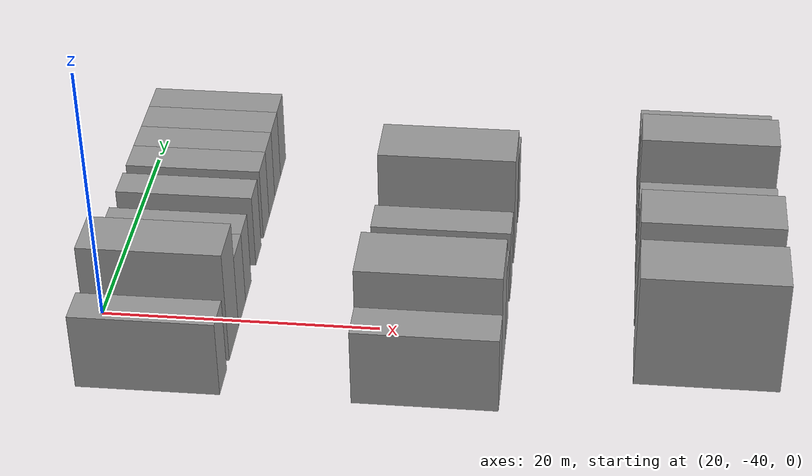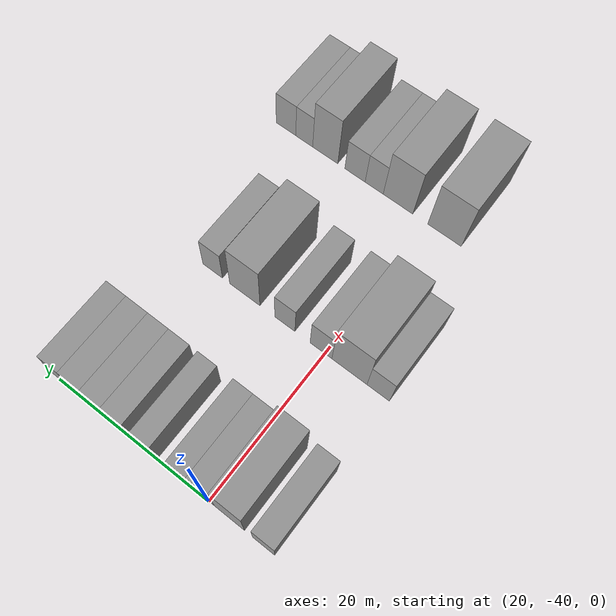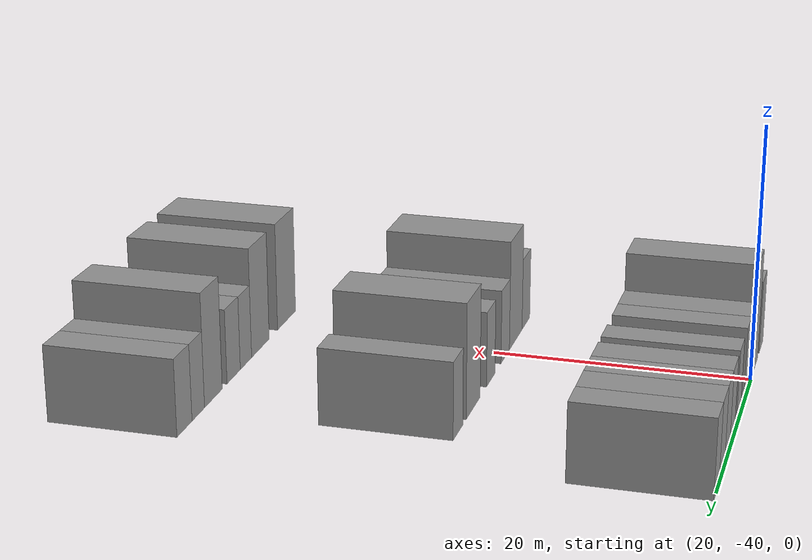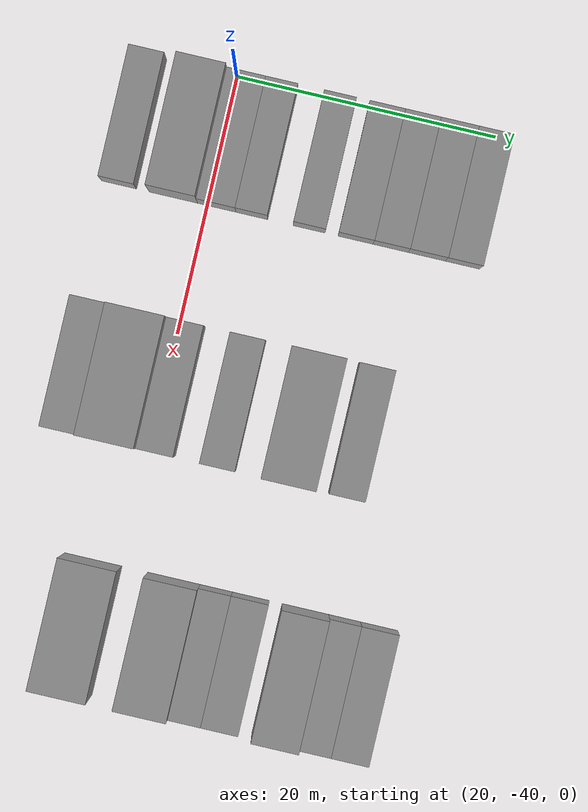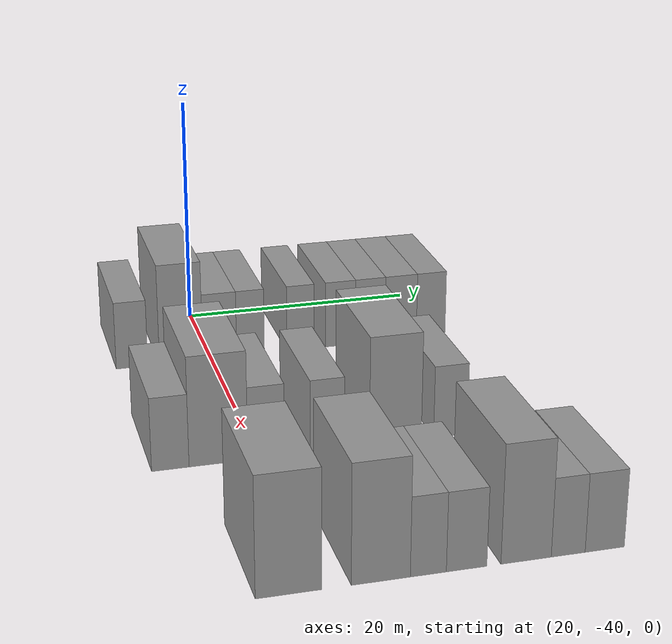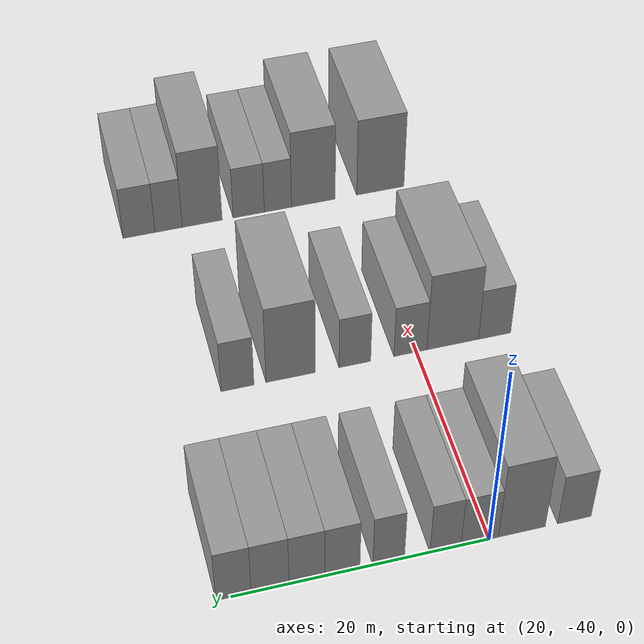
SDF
<sdf version="1.6">
 <world name="default">
  <model name="building_43">
   <static>1</static>
   <pose>25.0000 -46.8148 0 0.000000 0.000000 0.000000</pose>
   <link name="link">
    <pose>0 0 3.00 0 0 0</pose>
    <collision name="collision"><geometry><box><size>10.0000 2.6999 6.0000</size></box></geometry></collision>
    <visual name="visual">
     <cast_shadows>0</cast_shadows>
     <geometry><box><size>10.0000 2.6999 6.0000</size></box></geometry>
     <material>
      <script>
       <uri>model://grey_wall/materials/scripts</uri>
       <uri>model://grey_wall/materials/textures</uri>
       <name>vrc/grey_wall</name>
      </script>
     </material>
    </visual>
   </link>
  </model>
  <model name="building_44">
   <static>1</static>
   <pose>25.0000 -42.5938 0 0.000000 0.000000 0.000000</pose>
   <link name="link">
    <pose>0 0 4.50 0 0 0</pose>
    <collision name="collision"><geometry><box><size>10.0000 3.7421 9.0000</size></box></geometry></collision>
    <visual name="visual">
     <cast_shadows>0</cast_shadows>
     <geometry><box><size>10.0000 3.7421 9.0000</size></box></geometry>
     <material>
      <script>
       <uri>model://grey_wall/materials/scripts</uri>
       <uri>model://grey_wall/materials/textures</uri>
       <name>vrc/grey_wall</name>
      </script>
     </material>
    </visual>
   </link>
  </model>
  <model name="building_45">
   <static>1</static>
   <pose>25.0000 -39.2395 0 0.000000 0.000000 0.000000</pose>
   <link name="link">
    <pose>0 0 3.00 0 0 0</pose>
    <collision name="collision"><geometry><box><size>10.0000 2.9665 6.0000</size></box></geometry></collision>
    <visual name="visual">
     <cast_shadows>0</cast_shadows>
     <geometry><box><size>10.0000 2.9665 6.0000</size></box></geometry>
     <material>
      <script>
       <uri>model://grey_wall/materials/scripts</uri>
       <uri>model://grey_wall/materials/textures</uri>
       <name>vrc/grey_wall</name>
      </script>
     </material>
    </visual>
   </link>
  </model>
  <model name="building_46">
   <static>1</static>
   <pose>25.0000 -36.5305 0 0.000000 0.000000 0.000000</pose>
   <link name="link">
    <pose>0 0 3.00 0 0 0</pose>
    <collision name="collision"><geometry><box><size>10.0000 2.4515 6.0000</size></box></geometry></collision>
    <visual name="visual">
     <cast_shadows>0</cast_shadows>
     <geometry><box><size>10.0000 2.4515 6.0000</size></box></geometry>
     <material>
      <script>
       <uri>model://grey_wall/materials/scripts</uri>
       <uri>model://grey_wall/materials/textures</uri>
       <name>vrc/grey_wall</name>
      </script>
     </material>
    </visual>
   </link>
  </model>
  <model name="building_47">
   <static>1</static>
   <pose>25.0000 -32.0762 0 0.000000 0.000000 0.000000</pose>
   <link name="link">
    <pose>0 0 3.00 0 0 0</pose>
    <collision name="collision"><geometry><box><size>10.0000 2.4571 6.0000</size></box></geometry></collision>
    <visual name="visual">
     <cast_shadows>0</cast_shadows>
     <geometry><box><size>10.0000 2.4571 6.0000</size></box></geometry>
     <material>
      <script>
       <uri>model://grey_wall/materials/scripts</uri>
       <uri>model://grey_wall/materials/textures</uri>
       <name>vrc/grey_wall</name>
      </script>
     </material>
    </visual>
   </link>
  </model>
  <model name="building_48">
   <static>1</static>
   <pose>25.0000 -28.4923 0 0.000000 0.000000 0.000000</pose>
   <link name="link">
    <pose>0 0 3.00 0 0 0</pose>
    <collision name="collision"><geometry><box><size>10.0000 2.7107 6.0000</size></box></geometry></collision>
    <visual name="visual">
     <cast_shadows>0</cast_shadows>
     <geometry><box><size>10.0000 2.7107 6.0000</size></box></geometry>
     <material>
      <script>
       <uri>model://grey_wall/materials/scripts</uri>
       <uri>model://grey_wall/materials/textures</uri>
       <name>vrc/grey_wall</name>
      </script>
     </material>
    </visual>
   </link>
  </model>
  <model name="building_49">
   <static>1</static>
   <pose>25.0000 -25.7781 0 0.000000 0.000000 0.000000</pose>
   <link name="link">
    <pose>0 0 3.00 0 0 0</pose>
    <collision name="collision"><geometry><box><size>10.0000 2.7178 6.0000</size></box></geometry></collision>
    <visual name="visual">
     <cast_shadows>0</cast_shadows>
     <geometry><box><size>10.0000 2.7178 6.0000</size></box></geometry>
     <material>
      <script>
       <uri>model://grey_wall/materials/scripts</uri>
       <uri>model://grey_wall/materials/textures</uri>
       <name>vrc/grey_wall</name>
      </script>
     </material>
    </visual>
   </link>
  </model>
  <model name="building_50">
   <static>1</static>
   <pose>25.0000 -22.9777 0 0.000000 0.000000 0.000000</pose>
   <link name="link">
    <pose>0 0 3.00 0 0 0</pose>
    <collision name="collision"><geometry><box><size>10.0000 2.8830 6.0000</size></box></geometry></collision>
    <visual name="visual">
     <cast_shadows>0</cast_shadows>
     <geometry><box><size>10.0000 2.8830 6.0000</size></box></geometry>
     <material>
      <script>
       <uri>model://grey_wall/materials/scripts</uri>
       <uri>model://grey_wall/materials/textures</uri>
       <name>vrc/grey_wall</name>
      </script>
     </material>
    </visual>
   </link>
  </model>
  <model name="building_51">
   <static>1</static>
   <pose>25.0000 -20.2062 0 0.000000 0.000000 0.000000</pose>
   <link name="link">
    <pose>0 0 3.00 0 0 0</pose>
    <collision name="collision"><geometry><box><size>10.0000 2.6601 6.0000</size></box></geometry></collision>
    <visual name="visual">
     <cast_shadows>0</cast_shadows>
     <geometry><box><size>10.0000 2.6601 6.0000</size></box></geometry>
     <material>
      <script>
       <uri>model://grey_wall/materials/scripts</uri>
       <uri>model://grey_wall/materials/textures</uri>
       <name>vrc/grey_wall</name>
      </script>
     </material>
    </visual>
   </link>
  </model>
  <model name="building_170">
   <static>1</static>
   <pose>44.0000 -46.7871 0 0.000000 0.000000 0.000000</pose>
   <link name="link">
    <pose>0 0 3.00 0 0 0</pose>
    <collision name="collision"><geometry><box><size>10.0000 2.8296 6.0000</size></box></geometry></collision>
    <visual name="visual">
     <cast_shadows>0</cast_shadows>
     <geometry><box><size>10.0000 2.8296 6.0000</size></box></geometry>
     <material>
      <script>
       <uri>model://grey_wall/materials/scripts</uri>
       <uri>model://grey_wall/materials/textures</uri>
       <name>vrc/grey_wall</name>
      </script>
     </material>
    </visual>
   </link>
  </model>
  <model name="building_171">
   <static>1</static>
   <pose>44.0000 -43.1258 0 0.000000 0.000000 0.000000</pose>
   <link name="link">
    <pose>0 0 4.50 0 0 0</pose>
    <collision name="collision"><geometry><box><size>10.0000 4.4929 9.0000</size></box></geometry></collision>
    <visual name="visual">
     <cast_shadows>0</cast_shadows>
     <geometry><box><size>10.0000 4.4929 9.0000</size></box></geometry>
     <material>
      <script>
       <uri>model://grey_wall/materials/scripts</uri>
       <uri>model://grey_wall/materials/textures</uri>
       <name>vrc/grey_wall</name>
      </script>
     </material>
    </visual>
   </link>
  </model>
  <model name="building_172">
   <static>1</static>
   <pose>44.0000 -39.4519 0 0.000000 0.000000 0.000000</pose>
   <link name="link">
    <pose>0 0 3.00 0 0 0</pose>
    <collision name="collision"><geometry><box><size>10.0000 2.8550 6.0000</size></box></geometry></collision>
    <visual name="visual">
     <cast_shadows>0</cast_shadows>
     <geometry><box><size>10.0000 2.8550 6.0000</size></box></geometry>
     <material>
      <script>
       <uri>model://grey_wall/materials/scripts</uri>
       <uri>model://grey_wall/materials/textures</uri>
       <name>vrc/grey_wall</name>
      </script>
     </material>
    </visual>
   </link>
  </model>
  <model name="building_173">
   <static>1</static>
   <pose>44.0000 -34.6729 0 0.000000 0.000000 0.000000</pose>
   <link name="link">
    <pose>0 0 3.00 0 0 0</pose>
    <collision name="collision"><geometry><box><size>10.0000 2.7029 6.0000</size></box></geometry></collision>
    <visual name="visual">
     <cast_shadows>0</cast_shadows>
     <geometry><box><size>10.0000 2.7029 6.0000</size></box></geometry>
     <material>
      <script>
       <uri>model://grey_wall/materials/scripts</uri>
       <uri>model://grey_wall/materials/textures</uri>
       <name>vrc/grey_wall</name>
      </script>
     </material>
    </visual>
   </link>
  </model>
  <model name="building_174">
   <static>1</static>
   <pose>44.0000 -29.2379 0 0.000000 0.000000 0.000000</pose>
   <link name="link">
    <pose>0 0 4.50 0 0 0</pose>
    <collision name="collision"><geometry><box><size>10.0000 4.1672 9.0000</size></box></geometry></collision>
    <visual name="visual">
     <cast_shadows>0</cast_shadows>
     <geometry><box><size>10.0000 4.1672 9.0000</size></box></geometry>
     <material>
      <script>
       <uri>model://grey_wall/materials/scripts</uri>
       <uri>model://grey_wall/materials/textures</uri>
       <name>vrc/grey_wall</name>
      </script>
     </material>
    </visual>
   </link>
  </model>
  <model name="building_175">
   <static>1</static>
   <pose>44.0000 -24.7794 0 0.000000 0.000000 0.000000</pose>
   <link name="link">
    <pose>0 0 3.00 0 0 0</pose>
    <collision name="collision"><geometry><box><size>10.0000 2.7498 6.0000</size></box></geometry></collision>
    <visual name="visual">
     <cast_shadows>0</cast_shadows>
     <geometry><box><size>10.0000 2.7498 6.0000</size></box></geometry>
     <material>
      <script>
       <uri>model://grey_wall/materials/scripts</uri>
       <uri>model://grey_wall/materials/textures</uri>
       <name>vrc/grey_wall</name>
      </script>
     </material>
    </visual>
   </link>
  </model>
  <model name="building_281">
   <static>1</static>
   <pose>63.0000 -42.2731 0 0.000000 0.000000 0.000000</pose>
   <link name="link">
    <pose>0 0 4.50 0 0 0</pose>
    <collision name="collision"><geometry><box><size>10.0000 4.4457 9.0000</size></box></geometry></collision>
    <visual name="visual">
     <cast_shadows>0</cast_shadows>
     <geometry><box><size>10.0000 4.4457 9.0000</size></box></geometry>
     <material>
      <script>
       <uri>model://grey_wall/materials/scripts</uri>
       <uri>model://grey_wall/materials/textures</uri>
       <name>vrc/grey_wall</name>
      </script>
     </material>
    </visual>
   </link>
  </model>
  <model name="building_282">
   <static>1</static>
   <pose>63.0000 -36.0247 0 0.000000 0.000000 0.000000</pose>
   <link name="link">
    <pose>0 0 4.50 0 0 0</pose>
    <collision name="collision"><geometry><box><size>10.0000 4.0511 9.0000</size></box></geometry></collision>
    <visual name="visual">
     <cast_shadows>0</cast_shadows>
     <geometry><box><size>10.0000 4.0511 9.0000</size></box></geometry>
     <material>
      <script>
       <uri>model://grey_wall/materials/scripts</uri>
       <uri>model://grey_wall/materials/textures</uri>
       <name>vrc/grey_wall</name>
      </script>
     </material>
    </visual>
   </link>
  </model>
  <model name="building_283">
   <static>1</static>
   <pose>63.0000 -32.7454 0 0.000000 0.000000 0.000000</pose>
   <link name="link">
    <pose>0 0 3.00 0 0 0</pose>
    <collision name="collision"><geometry><box><size>10.0000 2.5075 6.0000</size></box></geometry></collision>
    <visual name="visual">
     <cast_shadows>0</cast_shadows>
     <geometry><box><size>10.0000 2.5075 6.0000</size></box></geometry>
     <material>
      <script>
       <uri>model://grey_wall/materials/scripts</uri>
       <uri>model://grey_wall/materials/textures</uri>
       <name>vrc/grey_wall</name>
      </script>
     </material>
    </visual>
   </link>
  </model>
  <model name="building_284">
   <static>1</static>
   <pose>63.0000 -30.0654 0 0.000000 0.000000 0.000000</pose>
   <link name="link">
    <pose>0 0 3.00 0 0 0</pose>
    <collision name="collision"><geometry><box><size>10.0000 2.8526 6.0000</size></box></geometry></collision>
    <visual name="visual">
     <cast_shadows>0</cast_shadows>
     <geometry><box><size>10.0000 2.8526 6.0000</size></box></geometry>
     <material>
      <script>
       <uri>model://grey_wall/materials/scripts</uri>
       <uri>model://grey_wall/materials/textures</uri>
       <name>vrc/grey_wall</name>
      </script>
     </material>
    </visual>
   </link>
  </model>
  <model name="building_285">
   <static>1</static>
   <pose>63.0000 -25.8348 0 0.000000 0.000000 0.000000</pose>
   <link name="link">
    <pose>0 0 4.50 0 0 0</pose>
    <collision name="collision"><geometry><box><size>10.0000 3.6086 9.0000</size></box></geometry></collision>
    <visual name="visual">
     <cast_shadows>0</cast_shadows>
     <geometry><box><size>10.0000 3.6086 9.0000</size></box></geometry>
     <material>
      <script>
       <uri>model://grey_wall/materials/scripts</uri>
       <uri>model://grey_wall/materials/textures</uri>
       <name>vrc/grey_wall</name>
      </script>
     </material>
    </visual>
   </link>
  </model>
  <model name="building_286">
   <static>1</static>
   <pose>63.0000 -22.8011 0 0.000000 0.000000 0.000000</pose>
   <link name="link">
    <pose>0 0 3.00 0 0 0</pose>
    <collision name="collision"><geometry><box><size>10.0000 2.4588 6.0000</size></box></geometry></collision>
    <visual name="visual">
     <cast_shadows>0</cast_shadows>
     <geometry><box><size>10.0000 2.4588 6.0000</size></box></geometry>
     <material>
      <script>
       <uri>model://grey_wall/materials/scripts</uri>
       <uri>model://grey_wall/materials/textures</uri>
       <name>vrc/grey_wall</name>
      </script>
     </material>
    </visual>
   </link>
  </model>
  <model name="building_287">
   <static>1</static>
   <pose>63.0000 -20.1354 0 0.000000 0.000000 0.000000</pose>
   <link name="link">
    <pose>0 0 3.00 0 0 0</pose>
    <collision name="collision"><geometry><box><size>10.0000 2.8726 6.0000</size></box></geometry></collision>
    <visual name="visual">
     <cast_shadows>0</cast_shadows>
     <geometry><box><size>10.0000 2.8726 6.0000</size></box></geometry>
     <material>
      <script>
       <uri>model://grey_wall/materials/scripts</uri>
       <uri>model://grey_wall/materials/textures</uri>
       <name>vrc/grey_wall</name>
      </script>
     </material>
    </visual>
   </link>
  </model>
 </world>
</sdf>
